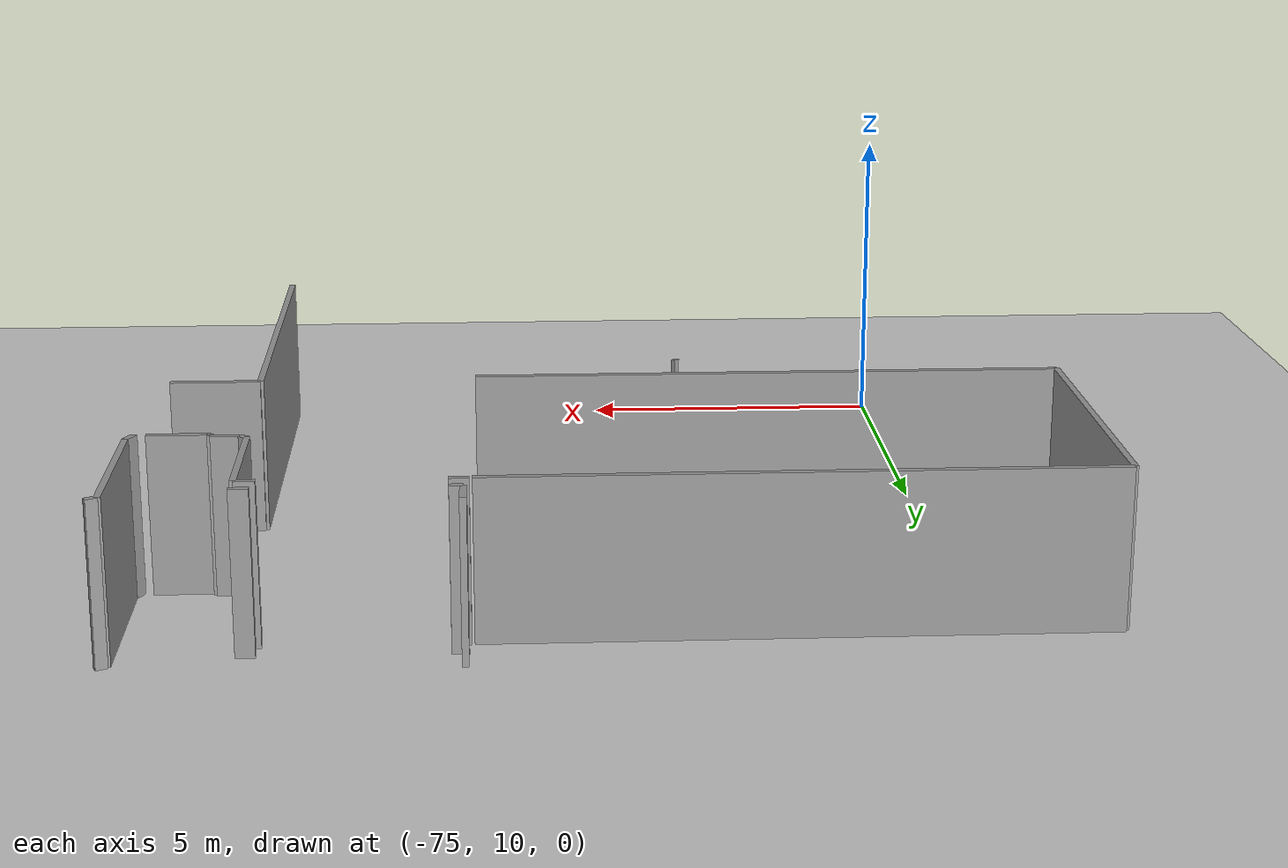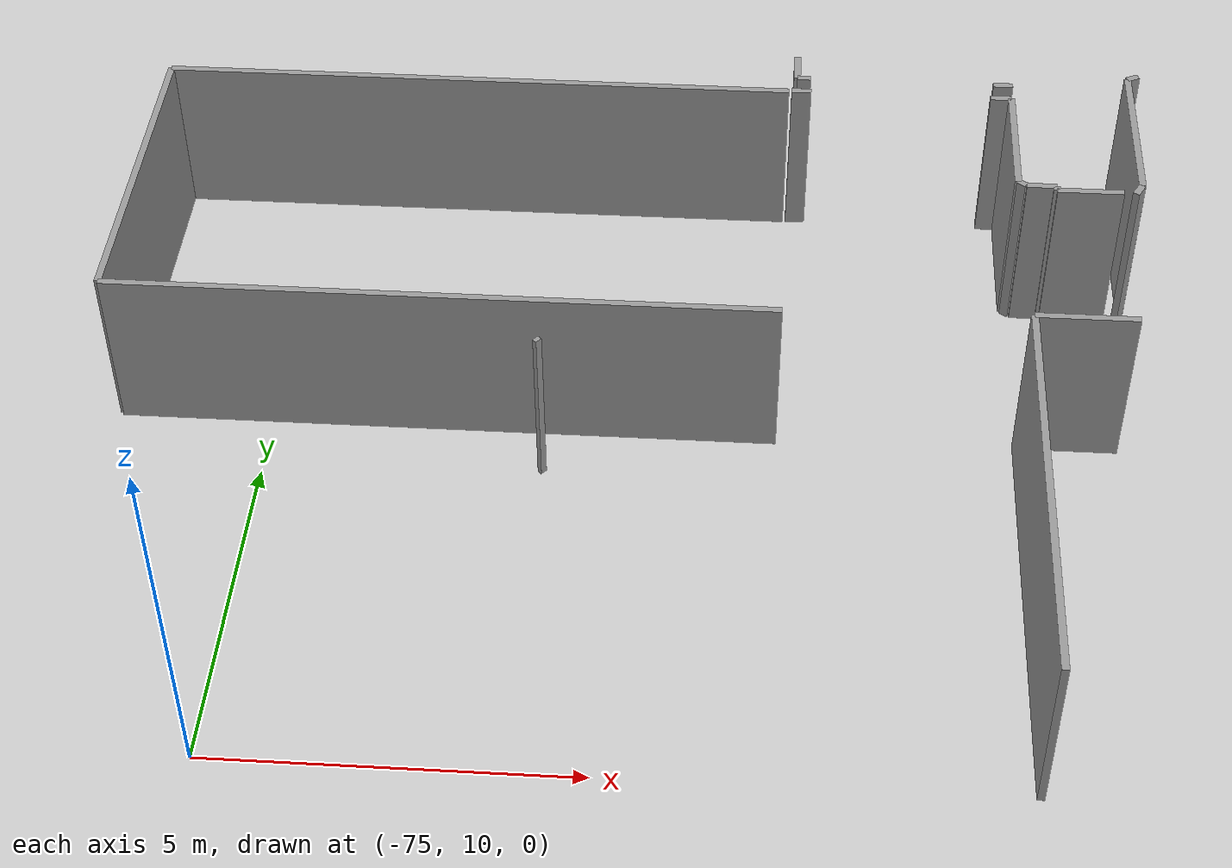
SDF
<sdf version="1.6">
 <world name="default">
  <model name="ground_plane">
   <static>1</static>
   <link name="link">
    <collision name="collision">
     <geometry><plane><normal>0 0 1</normal><size>100 100</size></plane></geometry>
     <surface><friction><ode><mu>100</mu><mu2>50</mu2></ode></friction></surface>
    </collision>
    <visual name="visual">
     <cast_shadows>0</cast_shadows>
     <geometry><plane><normal>0 0 1</normal><size>100 100</size></plane></geometry>
     <material>
      <script><uri>file://media/materials/scripts/gazebo.material</uri><name>Gazebo/Grey</name></script>
     </material>
    </visual>
   </link>
  </model>
  <model name="0510035739_A_40_1_102">
   <static>1</static>
   <link name="Wall_123">
    <collision name="Wall_123_Collision">
     <geometry><box><size>0.291400748625 0.1 2.5</size></box></geometry>
     <pose>0.145700374312 0 1.25 0 0 0</pose>
    </collision>
    <visual name="Wall_123_Visual">
     <pose>0.145700374312 0 1.25 0 0 0</pose>
     <geometry><box><size>0.291400748625 0.1 2.5</size></box></geometry>
     <material>
      <script><uri>file://media/materials/scripts/gazebo.material</uri><name>Gazebo/Grey</name></script>
      <ambient>1 1 1 1</ambient>
     </material>
    </visual>
    <pose>28.0238877292 -28.4701588058 0 0 0 3.14159265359</pose>
   </link>
   <link name="Wall_124">
    <collision name="Wall_124_Collision">
     <geometry><box><size>0.201229537949 0.1 2.5</size></box></geometry>
     <pose>0.100614768974 0 1.25 0 0 0</pose>
    </collision>
    <visual name="Wall_124_Visual">
     <pose>0.100614768974 0 1.25 0 0 0</pose>
     <geometry><box><size>0.201229537949 0.1 2.5</size></box></geometry>
     <material>
      <script><uri>file://media/materials/scripts/gazebo.material</uri><name>Gazebo/Grey</name></script>
      <ambient>1 1 1 1</ambient>
     </material>
    </visual>
    <pose>24.9924538923 -28.4701588058 0 0 0 3.14159265359</pose>
   </link>
   <link name="Wall_125">
    <collision name="Wall_125_Collision">
     <geometry><box><size>0.517592938117 0.1 2.5</size></box></geometry>
     <pose>0.258796469058 0 1.25 0 0 0</pose>
    </collision>
    <visual name="Wall_125_Visual">
     <pose>0.258796469058 0 1.25 0 0 0</pose>
     <geometry><box><size>0.517592938117 0.1 2.5</size></box></geometry>
     <material>
      <script><uri>file://media/materials/scripts/gazebo.material</uri><name>Gazebo/Grey</name></script>
      <ambient>1 1 1 1</ambient>
     </material>
    </visual>
    <pose>24.7912243544 -28.4701588058 0 0 0 1.57079632679</pose>
   </link>
   <link name="Wall_147">
    <collision name="Wall_147_Collision">
     <geometry><box><size>4.9357275403 0.1 2.5</size></box></geometry>
     <pose>2.46786377015 0 1.25 0 0 0</pose>
    </collision>
    <visual name="Wall_147_Visual">
     <pose>2.46786377015 0 1.25 0 0 0</pose>
     <geometry><box><size>4.9357275403 0.1 2.5</size></box></geometry>
     <material>
      <script><uri>file://media/materials/scripts/gazebo.material</uri><name>Gazebo/Grey</name></script>
      <ambient>1 1 1 1</ambient>
     </material>
    </visual>
    <pose>15.3194264194 -33.7441557466 0 0 0 1.57079632679</pose>
   </link>
   <link name="Wall_148">
    <collision name="Wall_148_Collision">
     <geometry><box><size>9.35055077034 0.1 2.5</size></box></geometry>
     <pose>4.67527538517 0 1.25 0 0 0</pose>
    </collision>
    <visual name="Wall_148_Visual">
     <pose>4.67527538517 0 1.25 0 0 0</pose>
     <geometry><box><size>9.35055077034 0.1 2.5</size></box></geometry>
     <material>
      <script><uri>file://media/materials/scripts/gazebo.material</uri><name>Gazebo/Grey</name></script>
      <ambient>1 1 1 1</ambient>
     </material>
    </visual>
    <pose>15.3194264194 -28.8084282063 0 0 0 0.0</pose>
   </link>
   <link name="Wall_149">
    <collision name="Wall_149_Collision">
     <geometry><box><size>9.35055876398 0.1 2.5</size></box></geometry>
     <pose>4.67527938199 0 1.25 0 0 0</pose>
    </collision>
    <visual name="Wall_149_Visual">
     <pose>4.67527938199 0 1.25 0 0 0</pose>
     <geometry><box><size>9.35055876398 0.1 2.5</size></box></geometry>
     <material>
      <script><uri>file://media/materials/scripts/gazebo.material</uri><name>Gazebo/Grey</name></script>
      <ambient>1 1 1 1</ambient>
     </material>
    </visual>
    <pose>24.6699771897 -33.7563823514 0 0 0 3.14028507309</pose>
   </link>
   <link name="Wall_153">
    <collision name="Wall_153_Collision">
     <geometry><box><size>0.290127143954 0.1 2.5</size></box></geometry>
     <pose>0.145063571977 0 1.25 0 0 0</pose>
    </collision>
    <visual name="Wall_153_Visual">
     <pose>0.145063571977 0 1.25 0 0 0</pose>
     <geometry><box><size>0.290127143954 0.1 2.5</size></box></geometry>
     <material>
      <script><uri>file://media/materials/scripts/gazebo.material</uri><name>Gazebo/Grey</name></script>
      <ambient>1 1 1 1</ambient>
     </material>
    </visual>
    <pose>24.7117514229 -28.7951827177 0 0 0 0.0</pose>
   </link>
   <link name="Wall_154">
    <collision name="Wall_154_Collision">
     <geometry><box><size>0.312287865222 0.1 2.5</size></box></geometry>
     <pose>0.156143932611 0 1.25 0 0 0</pose>
    </collision>
    <visual name="Wall_154_Visual">
     <pose>0.156143932611 0 1.25 0 0 0</pose>
     <geometry><box><size>0.312287865222 0.1 2.5</size></box></geometry>
     <material>
      <script><uri>file://media/materials/scripts/gazebo.material</uri><name>Gazebo/Grey</name></script>
      <ambient>1 1 1 1</ambient>
     </material>
    </visual>
    <pose>27.676703096 -28.7951827177 0 0 0 0.0</pose>
   </link>
   <link name="Wall_155">
    <collision name="Wall_155_Collision">
     <geometry><box><size>1.97561556498 0.1 2.5</size></box></geometry>
     <pose>0.987807782489 0 1.25 0 0 0</pose>
    </collision>
    <visual name="Wall_155_Visual">
     <pose>0.987807782489 0 1.25 0 0 0</pose>
     <geometry><box><size>1.97561556498 0.1 2.5</size></box></geometry>
     <material>
      <script><uri>file://media/materials/scripts/gazebo.material</uri><name>Gazebo/Grey</name></script>
      <ambient>1 1 1 1</ambient>
     </material>
    </visual>
    <pose>27.9889909612 -28.7951827177 0 0 0 -1.57079632679</pose>
   </link>
   <link name="Wall_156">
    <collision name="Wall_156_Collision">
     <geometry><box><size>0.13903307005 0.1 2.5</size></box></geometry>
     <pose>0.0695165350248 0 1.25 0 0 0</pose>
    </collision>
    <visual name="Wall_156_Visual">
     <pose>0.0695165350248 0 1.25 0 0 0</pose>
     <geometry><box><size>0.13903307005 0.1 2.5</size></box></geometry>
     <material>
      <script><uri>file://media/materials/scripts/gazebo.material</uri><name>Gazebo/Grey</name></script>
      <ambient>1 1 1 1</ambient>
     </material>
    </visual>
    <pose>27.9889909612 -30.7707982827 0 0 0 -0.588510733585</pose>
   </link>
   <link name="Wall_157">
    <collision name="Wall_157_Collision">
     <geometry><box><size>0.429599145698 0.1 2.5</size></box></geometry>
     <pose>0.214799572849 0 1.25 0 0 0</pose>
    </collision>
    <visual name="Wall_157_Visual">
     <pose>0.214799572849 0 1.25 0 0 0</pose>
     <geometry><box><size>0.429599145698 0.1 2.5</size></box></geometry>
     <material>
      <script><uri>file://media/materials/scripts/gazebo.material</uri><name>Gazebo/Grey</name></script>
      <ambient>1 1 1 1</ambient>
     </material>
    </visual>
    <pose>28.1046342653 -30.8479787257 0 0 0 -0.0254986241707</pose>
   </link>
   <link name="Wall_158">
    <collision name="Wall_158_Collision">
     <geometry><box><size>0.0789634895749 0.1 2.5</size></box></geometry>
     <pose>0.0394817447875 0 1.25 0 0 0</pose>
    </collision>
    <visual name="Wall_158_Visual">
     <pose>0.0394817447875 0 1.25 0 0 0</pose>
     <geometry><box><size>0.0789634895749 0.1 2.5</size></box></geometry>
     <material>
      <script><uri>file://media/materials/scripts/gazebo.material</uri><name>Gazebo/Grey</name></script>
      <ambient>1 1 1 1</ambient>
     </material>
    </visual>
    <pose>28.5340937602 -30.8589317259 0 0 0 -1.57079632679</pose>
   </link>
   <link name="Wall_159">
    <collision name="Wall_159_Collision">
     <geometry><box><size>0.949344921438 0.1 2.5</size></box></geometry>
     <pose>0.474672460719 0 1.25 0 0 0</pose>
    </collision>
    <visual name="Wall_159_Visual">
     <pose>0.474672460719 0 1.25 0 0 0</pose>
     <geometry><box><size>0.949344921438 0.1 2.5</size></box></geometry>
     <material>
      <script><uri>file://media/materials/scripts/gazebo.material</uri><name>Gazebo/Grey</name></script>
      <ambient>1 1 1 1</ambient>
     </material>
    </visual>
    <pose>28.5340937602 -30.9378952154 0 0 0 0.0</pose>
   </link>
   <link name="Wall_160">
    <collision name="Wall_160_Collision">
     <geometry><box><size>1.42185225422 0.1 2.5</size></box></geometry>
     <pose>0.710926127108 0 1.25 0 0 0</pose>
    </collision>
    <visual name="Wall_160_Visual">
     <pose>0.710926127108 0 1.25 0 0 0</pose>
     <geometry><box><size>1.42185225422 0.1 2.5</size></box></geometry>
     <material>
      <script><uri>file://media/materials/scripts/gazebo.material</uri><name>Gazebo/Grey</name></script>
      <ambient>1 1 1 1</ambient>
     </material>
    </visual>
    <pose>29.4834386817 -33.6460881869 0 0 0 3.14159265359</pose>
   </link>
   <link name="Wall_161">
    <collision name="Wall_161_Collision">
     <geometry><box><size>6.16577493113 0.1 2.5</size></box></geometry>
     <pose>3.08288746556 0 1.25 0 0 0</pose>
    </collision>
    <visual name="Wall_161_Visual">
     <pose>3.08288746556 0 1.25 0 0 0</pose>
     <geometry><box><size>6.16577493113 0.1 2.5</size></box></geometry>
     <material>
      <script><uri>file://media/materials/scripts/gazebo.material</uri><name>Gazebo/Grey</name></script>
      <ambient>1 1 1 1</ambient>
     </material>
    </visual>
    <pose>28.0615864274 -33.6460881869 0 0 0 -1.57079632679</pose>
   </link>
   <link name="Wall_165">
    <collision name="Wall_165_Collision">
     <geometry><box><size>0.0696818900356 0.1 2.5</size></box></geometry>
     <pose>0.0348409450178 0 1.25 0 0 0</pose>
    </collision>
    <visual name="Wall_165_Visual">
     <pose>0.0348409450178 0 1.25 0 0 0</pose>
     <geometry><box><size>0.0696818900356 0.1 2.5</size></box></geometry>
     <material>
      <script><uri>file://media/materials/scripts/gazebo.material</uri><name>Gazebo/Grey</name></script>
      <ambient>1 1 1 1</ambient>
     </material>
    </visual>
    <pose>21.3968131864 -34.5258942934 0 0 0 -0.718142241821</pose>
   </link>
   <link name="Wall_177">
    <collision name="Wall_177_Collision">
     <geometry><box><size>0.223359034115 0.1 2.5</size></box></geometry>
     <pose>0.111679517057 0 1.25 0 0 0</pose>
    </collision>
    <visual name="Wall_177_Visual">
     <pose>0.111679517057 0 1.25 0 0 0</pose>
     <geometry><box><size>0.223359034115 0.1 2.5</size></box></geometry>
     <material>
      <script><uri>file://media/materials/scripts/gazebo.material</uri><name>Gazebo/Grey</name></script>
      <ambient>1 1 1 1</ambient>
     </material>
    </visual>
    <pose>29.6487525679 -30.958782332 0 0 0 1.06480548699</pose>
   </link>
   <link name="Wall_178">
    <collision name="Wall_178_Collision">
     <geometry><box><size>2.5596906669 0.1 2.5</size></box></geometry>
     <pose>1.27984533345 0 1.25 0 0 0</pose>
    </collision>
    <visual name="Wall_178_Visual">
     <pose>1.27984533345 0 1.25 0 0 0</pose>
     <geometry><box><size>2.5596906669 0.1 2.5</size></box></geometry>
     <material>
      <script><uri>file://media/materials/scripts/gazebo.material</uri><name>Gazebo/Grey</name></script>
      <ambient>1 1 1 1</ambient>
     </material>
    </visual>
    <pose>29.7570089649 -30.7634113756 0 0 0 1.57079632679</pose>
   </link>
   <link name="Wall_179">
    <collision name="Wall_179_Collision">
     <geometry><box><size>0.181485224556 0.1 2.5</size></box></geometry>
     <pose>0.0907426122778 0 1.25 0 0 0</pose>
    </collision>
    <visual name="Wall_179_Visual">
     <pose>0.0907426122778 0 1.25 0 0 0</pose>
     <geometry><box><size>0.181485224556 0.1 2.5</size></box></geometry>
     <material>
      <script><uri>file://media/materials/scripts/gazebo.material</uri><name>Gazebo/Grey</name></script>
      <ambient>1 1 1 1</ambient>
     </material>
    </visual>
    <pose>29.7570089649 -28.2037207087 0 0 0 0.425349761217</pose>
   </link>
   <pose>-92.5 49.8157534709 0 0 0 0</pose>
  </model>
 </world>
</sdf>
